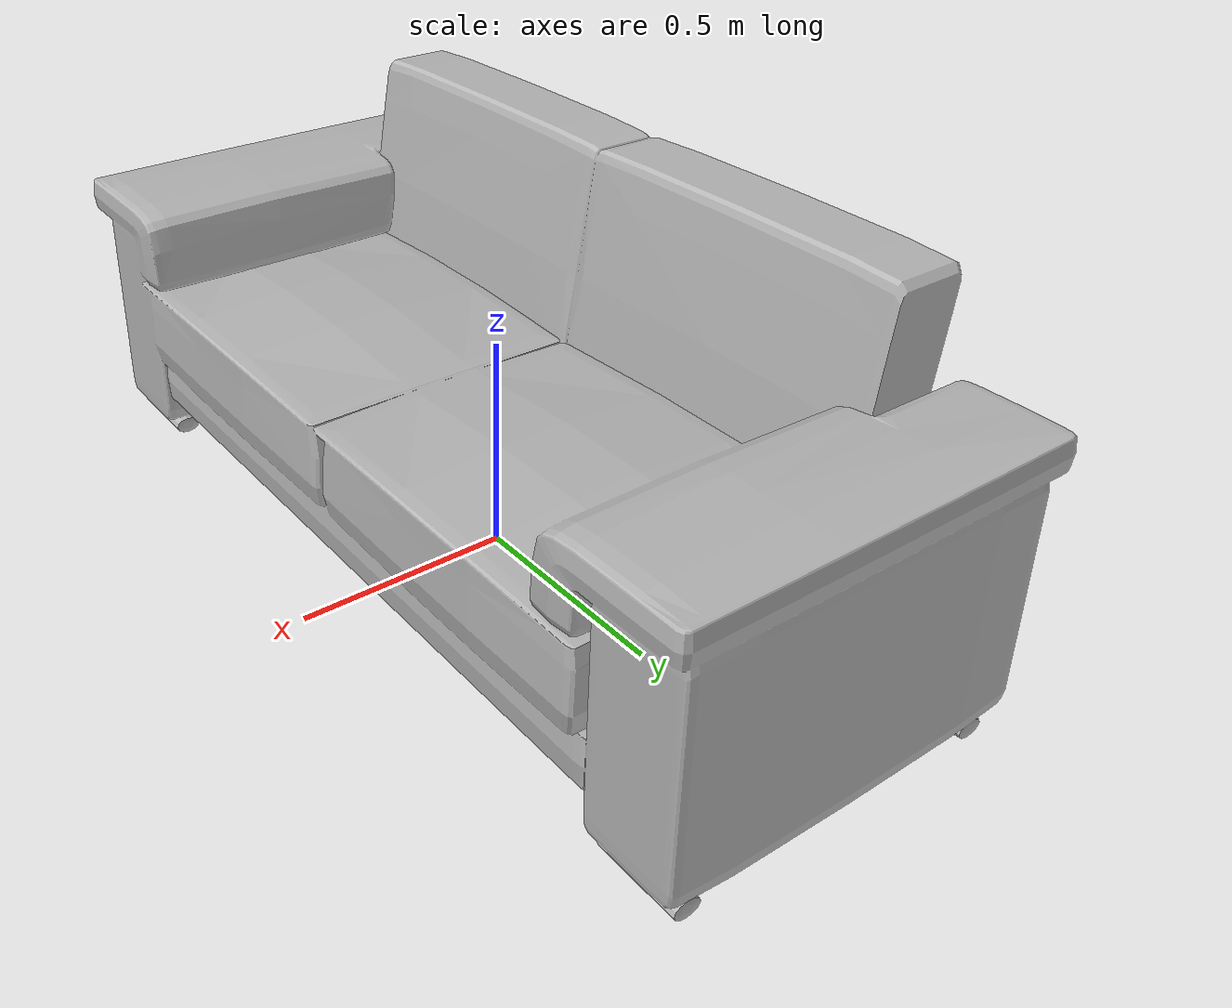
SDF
<?xml version='1.0'?>
<sdf version='1.4'>
  <model name='156'>
    <pose>0 0 0 0 0 0</pose>
    <static>true</static>
    <link name='link'>
      <collision name='collision'>
        <pose>0 0 0 0 0 0</pose>
        <geometry>
          <box>
            <size>0.92 2.15 2</size>
          </box>
        </geometry>
      </collision>
      <visual name='visual'>
        <pose>0 0 0 0 0 0</pose>
        <geometry>
          <mesh><uri>model://156/156.dae</uri></mesh>
        </geometry>
      </visual>
    </link>
  </model>
</sdf>
